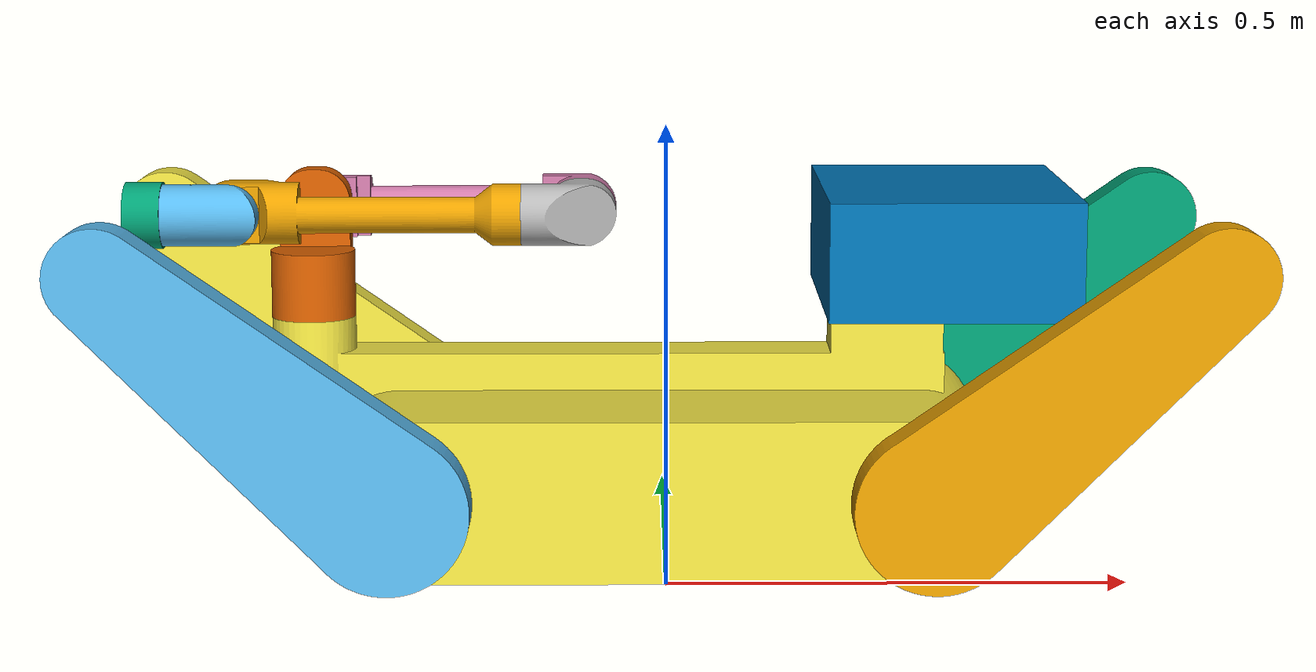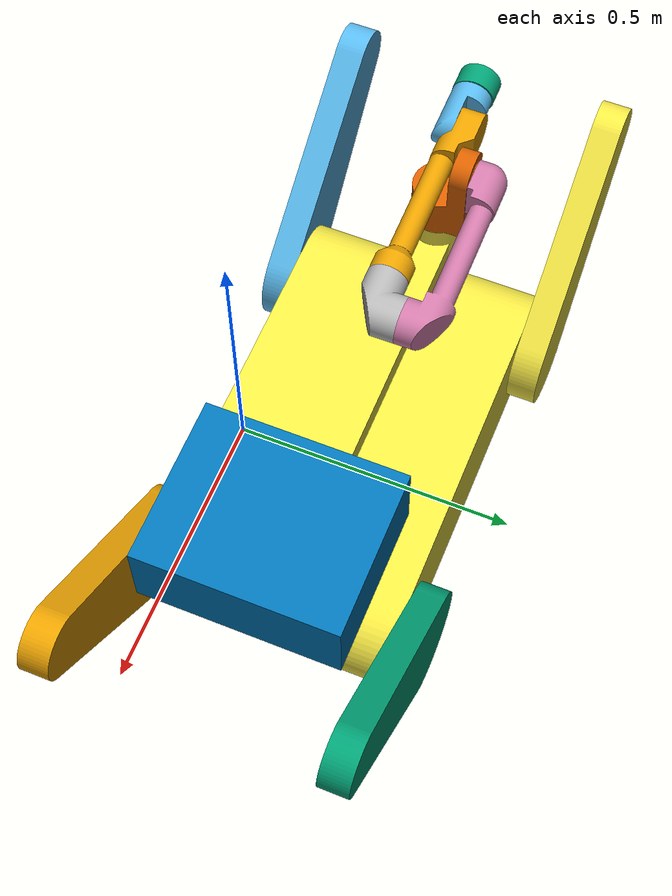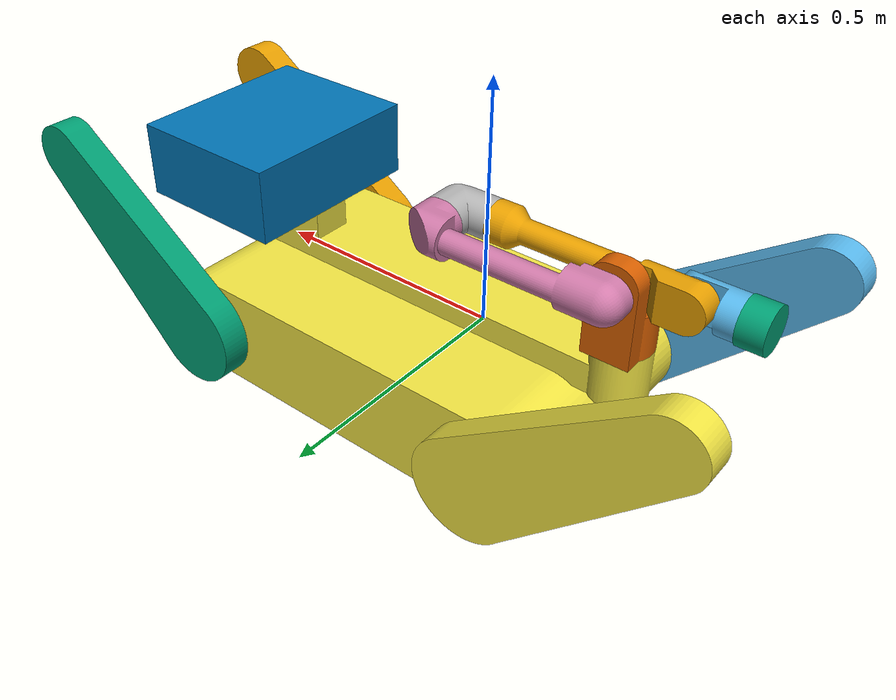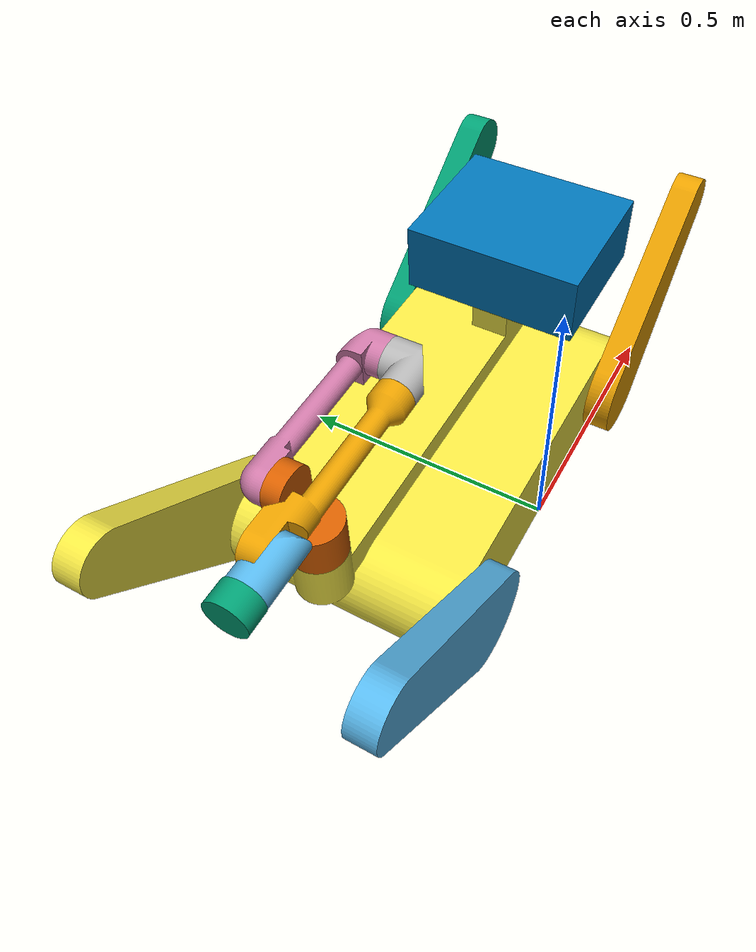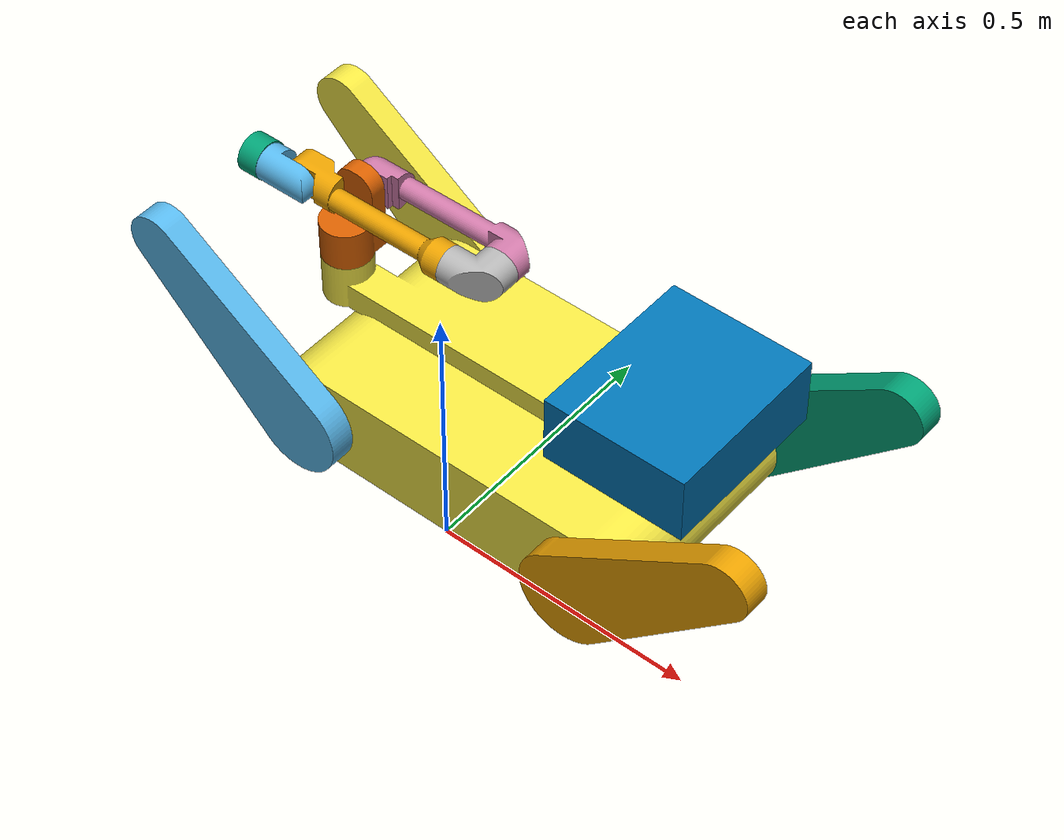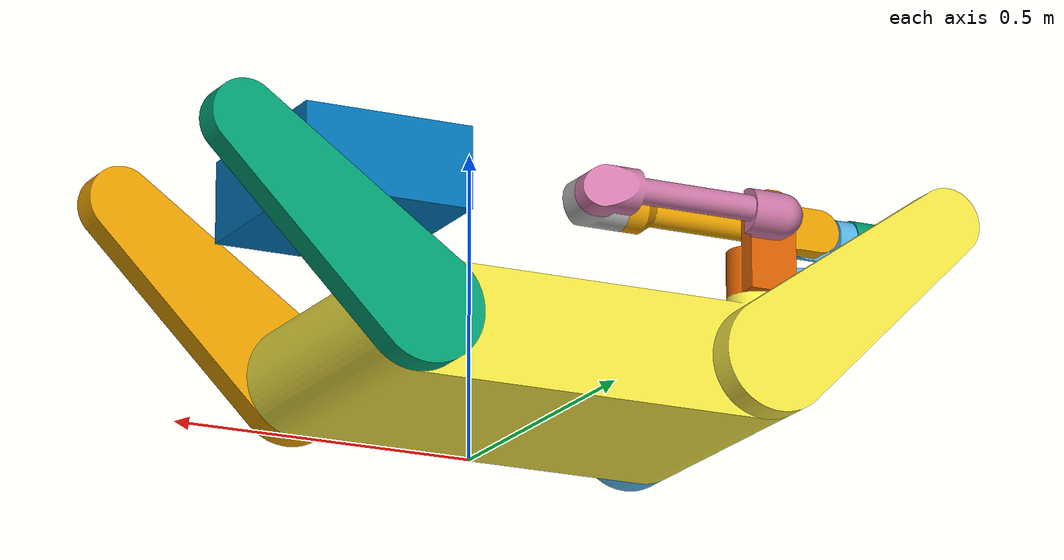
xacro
<?xml version="1.0"?>
<robot xmlns:xacro="http://www.ros.org/wiki/xacro" name="rove_full_low_res">
    <xacro:arg name="initial_positions_file" default="initial_positions.yaml" />

    <!-- Import rove_full_low_res urdf file -->
    <xacro:include filename="$(find rove_description)/urdf/rove_full_low_res.urdf" />

    <!-- Import control_xacro -->
    <xacro:include filename="rove_full_low_res.ros2_control.xacro" />

    <xacro:rove_full_low_res_ros2_control name="FakeSystem" initial_positions_file="$(arg initial_positions_file)"/>

</robot>

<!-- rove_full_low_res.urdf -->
<robot name="rove_full_low_res">
    <link name="FlipperBL">
        <inertial>
            <origin xyz="0.12159582122141516 0.10168343253448005 0.025000000000000005" rpy="0.0 -0.0 0.0" />
            <mass value="29.29052518083931" />
            <inertia ixx="0.2910866181633136" iyy="0.3900292627096684" izz="0.6689114953809776" ixy="-0.27678423112892325" iyz="2.7755575615628914e-17" ixz="0.0" />
        </inertial>
        <visual name="FlipperBL_visual">
            <origin xyz="-0.2968589956864575 -0.06317629882966745 0.0" rpy="-1.5707963267948966 -0.0 -0.08726646259971632" />
            <geometry>
                <mesh filename="package://rove_description/meshes/FlipperBL.stl" scale="0.001 0.001 0.001" />
            </geometry>
        </visual>
        <collision name="FlipperBL_collision">
            <origin xyz="-0.2968589956864575 -0.06317629882966745 0.0" rpy="-1.5707963267948966 -0.0 -0.08726646259971632" />
            <geometry>
                <mesh filename="package://rove_description/meshes/FlipperBL.stl" scale="0.001 0.001 0.001" />
            </geometry>
        </collision>
    </link>
    <link name="FlipperFL">
        <inertial>
            <origin xyz="-0.12125352408730372 0.10209137142127311 0.025" rpy="0.0 -0.0 0.0" />
            <mass value="29.2905251808393" />
            <inertia ixx="0.29237999451611363" iyy="0.38873588635686396" izz="0.6689114953809892" ixy="0.27701228827613233" iyz="2.7755575615628914e-17" ixz="0.0" />
        </inertial>
        <visual name="FlipperFL_visual">
            <origin xyz="0.3063762811858175 -0.0623436438703893 -8.881784197001253e-18" rpy="-1.5707963267948966 -0.0 0.08726646259971638" />
            <geometry>
                <mesh filename="package://rove_description/meshes/FlipperFL.stl" scale="0.001 0.001 0.001" />
            </geometry>
        </visual>
        <collision name="FlipperFL_collision">
            <origin xyz="0.3063762811858175 -0.0623436438703893 -8.881784197001253e-18" rpy="-1.5707963267948966 -0.0 0.08726646259971638" />
            <geometry>
                <mesh filename="package://rove_description/meshes/FlipperFL.stl" scale="0.001 0.001 0.001" />
            </geometry>
        </collision>
    </link>
    <link name="FlipperBR">
        <inertial>
            <origin xyz="0.1215958212214153 -0.10168343253448012 0.02500000000000007" rpy="0.0 -0.0 0.0" />
            <mass value="29.29052518083931" />
            <inertia ixx="0.2910866181633107" iyy="0.3900292627096622" izz="0.6689114953809678" ixy="0.2767842311289228" iyz="8.881784197001252e-16" ixz="0.0" />
        </inertial>
        <visual name="FlipperBR_visual">
            <origin xyz="-0.2968589956864576 0.06317629882966747 -0.418" rpy="1.5707963267948966 -0.0 0.08726646259971636" />
            <geometry>
                <mesh filename="package://rove_description/meshes/FlipperBR.stl" scale="0.001 0.001 0.001" />
            </geometry>
        </visual>
        <collision name="FlipperBR_collision">
            <origin xyz="-0.2968589956864576 0.06317629882966747 -0.418" rpy="1.5707963267948966 -0.0 0.08726646259971636" />
            <geometry>
                <mesh filename="package://rove_description/meshes/FlipperBR.stl" scale="0.001 0.001 0.001" />
            </geometry>
        </collision>
    </link>
    <link name="FlipperFR">
        <inertial>
            <origin xyz="-0.12125352408730372 -0.10209137142127314 0.02500000000000007" rpy="0.0 -0.0 0.0" />
            <mass value="29.2905251808393" />
            <inertia ixx="0.29237999451608143" iyy="0.3887358863568302" izz="0.6689114953809954" ixy="-0.27701228827613233" iyz="0.0" ixz="8.881784197001252e-16" />
        </inertial>
        <visual name="FlipperFR_visual">
            <origin xyz="0.30637628118581733 0.06234364387038916 -0.418" rpy="1.5707963267948966 -0.0 -0.08726646259971639" />
            <geometry>
                <mesh filename="package://rove_description/meshes/FlipperFR.stl" scale="0.001 0.001 0.001" />
            </geometry>
        </visual>
        <collision name="FlipperFR_collision">
            <origin xyz="0.30637628118581733 0.06234364387038916 -0.418" rpy="1.5707963267948966 -0.0 -0.08726646259971639" />
            <geometry>
                <mesh filename="package://rove_description/meshes/FlipperFR.stl" scale="0.001 0.001 0.001" />
            </geometry>
        </collision>
    </link>
    <link name="TopBox">
        <inertial>
            <origin xyz="3.552713678800501e-17 -4.146828338491559e-09 0.06581575918302096" rpy="0.0 -0.0 0.0" />
            <mass value="96.40121826749832" />
            <inertia ixx="0.7585335063712897" iyy="1.0461368392347783" izz="1.5262819900577664" ixy="8.881784197001252e-16" iyz="1.7763568394002505e-15" ixz="-8.881784197001252e-16" />
        </inertial>
        <visual name="TopBox_visual">
            <origin xyz="-0.209 0.31570997 -0.27868861" rpy="0.0 -0.0 -1.5707963267948966" />
            <geometry>
                <mesh filename="package://rove_description/meshes/TopBox.stl" scale="0.001 0.001 0.001" />
            </geometry>
        </visual>
        <collision name="TopBox_collision">
            <origin xyz="-0.209 0.31570997 -0.27868861" rpy="0.0 -0.0 -1.5707963267948966" />
            <geometry>
                <mesh filename="package://rove_description/meshes/TopBox.stl" scale="0.001 0.001 0.001" />
            </geometry>
        </collision>
    </link>
    <link name="ArmBase">
        <inertial>
            <origin xyz="-0.00013606355325087804 0.01657163505224524 0.05804777995982253" rpy="0.0 -0.0 0.0" />
            <mass value="6.7545205940294775" />
            <inertia ixx="0.017104166308066437" iyy="0.01517862348614507" izz="0.009498114793283552" ixy="1.5810979551389437e-05" iyz="-0.0034950167374411256" ixz="2.8696278390971663e-05" />
        </inertial>
        <visual name="ArmBase_visual">
            <origin xyz="0.40171020285820613 -0.20664929379471153 -0.259" rpy="6.173301504223946e-17 6.072753714006385e-17 0.008210442388665778" />
            <geometry>
                <mesh filename="package://rove_description/meshes/ArmBase.stl" scale="0.001 0.001 0.001" />
            </geometry>
        </visual>
        <collision name="ArmBase_collision">
            <origin xyz="0.40171020285820613 -0.20664929379471153 -0.259" rpy="6.173301504223946e-17 6.072753714006385e-17 0.008210442388665778" />
            <geometry>
                <mesh filename="package://rove_description/meshes/ArmBase.stl" scale="0.001 0.001 0.001" />
            </geometry>
        </collision>
    </link>
    <link name="ArmSectionA">
        <inertial>
            <origin xyz="0.1579891032905889 -3.552713678800501e-16 0.025077496294956952" rpy="0.0 -0.0 0.0" />
            <mass value="6.396156094543044" />
            <inertia ixx="0.0032596370720983092" iyy="0.09582761322448707" izz="0.09588274002141617" ixy="-1.1102230246251565e-15" iyz="-5.551115123125783e-16" ixz="0.0023194508655053903" />
        </inertial>
        <visual name="ArmSectionA_visual">
            <origin xyz="-0.3927698912750465 -0.378 -0.2732339921582292" rpy="1.5707963267948966 0.00821044238866564 3.141592653589793" />
            <geometry>
                <mesh filename="package://rove_description/meshes/ArmSectionA.stl" scale="0.001 0.001 0.001" />
            </geometry>
        </visual>
        <collision name="ArmSectionA_collision">
            <origin xyz="-0.3927698912750465 -0.378 -0.2732339921582292" rpy="1.5707963267948966 0.00821044238866564 3.141592653589793" />
            <geometry>
                <mesh filename="package://rove_description/meshes/ArmSectionA.stl" scale="0.001 0.001 0.001" />
            </geometry>
        </collision>
    </link>
    <link name="ArmSectionB">
        <inertial>
            <origin xyz="-0.017849007491051998 0.0 0.03779063134551585" rpy="0.0 -0.0 0.0" />
            <mass value="3.2157885894035196" />
            <inertia ixx="0.0024413319966500877" iyy="0.003866343551161111" izz="0.0035609359073050535" ixy="2.4980018054066027e-16" iyz="5.551115123125784e-17" ixz="0.0008295182515410814" />
        </inertial>
        <visual name="ArmSectionB_visual">
            <origin xyz="0.7020700410350835 -0.378 0.2492441619583238" rpy="-1.5707963267948966 0.00821044238866591 -1.1102604465006027e-16" />
            <geometry>
                <mesh filename="package://rove_description/meshes/ArmSectionB.stl" scale="0.001 0.001 0.001" />
            </geometry>
        </visual>
        <collision name="ArmSectionB_collision">
            <origin xyz="0.7020700410350835 -0.378 0.2492441619583238" rpy="-1.5707963267948966 0.00821044238866591 -1.1102604465006027e-16" />
            <geometry>
                <mesh filename="package://rove_description/meshes/ArmSectionB.stl" scale="0.001 0.001 0.001" />
            </geometry>
        </collision>
    </link>
    <link name="ArmSectionC">
        <inertial>
            <origin xyz="7.105427357601002e-17 0.004949483193104314 0.1865782854939781" rpy="3.038581678643135e-64 -0.0 0.0" />
            <mass value="5.889654425673101" />
            <inertia ixx="0.08542983391771675" iyy="0.08550696486907808" izz="0.0028521934194545304" ixy="-2.2204460492503136e-16" iyz="-0.0044164929169711615" ixz="6.661338147750941e-16" />
        </inertial>
        <visual name="ArmSectionC_visual">
            <origin xyz="0.37799999999999956 0.21129573878964278 -0.7659377974765399" rpy="-1.5707963267948608 1.562585884406231 1.5707963267949099" />
            <geometry>
                <mesh filename="package://rove_description/meshes/ArmSectionC.stl" scale="0.001 0.001 0.001" />
            </geometry>
        </visual>
        <collision name="ArmSectionC_collision">
            <origin xyz="0.37799999999999956 0.21129573878964278 -0.7659377974765399" rpy="-1.5707963267948608 1.562585884406231 1.5707963267949099" />
            <geometry>
                <mesh filename="package://rove_description/meshes/ArmSectionC.stl" scale="0.001 0.001 0.001" />
            </geometry>
        </collision>
    </link>
    <link name="ArmSectionD">
        <inertial>
            <origin xyz="-0.029632059801461993 2.1316282072803005e-16 -0.008621445623248434" rpy="0.0 -0.0 0.0" />
            <mass value="2.0771391836268105" />
            <inertia ixx="0.0011423755129120199" iyy="0.00247668255940503" izz="0.002561926425206252" ixy="-1.054711873393899e-15" iyz="-1.6653345369377353e-16" ixz="0.00040929731281363923" />
        </inertial>
        <visual name="ArmSectionD_visual">
            <origin xyz="1.0982797974765388 -0.3779999999999994 0.21402447878964267" rpy="-1.5707963267948966 -0.008210442388665678 1.366659615041774e-16" />
            <geometry>
                <mesh filename="package://rove_description/meshes/ArmSectionD.stl" scale="0.001 0.001 0.001" />
            </geometry>
        </visual>
        <collision name="ArmSectionD_collision">
            <origin xyz="1.0982797974765388 -0.3779999999999994 0.21402447878964267" rpy="-1.5707963267948966 -0.008210442388665678 1.366659615041774e-16" />
            <geometry>
                <mesh filename="package://rove_description/meshes/ArmSectionD.stl" scale="0.001 0.001 0.001" />
            </geometry>
        </collision>
    </link>
    <link name="ArmSectionE">
        <inertial>
            <origin xyz="1.4210854715202004e-16 -0.00017118928473184526 0.02084929946077736" rpy="0.0 -0.0 0.0" />
            <mass value="1.4461659101100297" />
            <inertia ixx="0.0007179779890870153" iyy="0.0007179981350707856" izz="0.0010168152596525264" ixy="1.1129985821867197e-13" iyz="-2.453641322369694e-06" ixz="1.898481372109018e-14" />
        </inertial>
        <visual name="ArmSectionE_visual">
            <origin xyz="0.37800000000004674 0.21462174950553956 -1.1710242404262494" rpy="-1.5707963267952678 1.562585884406228 1.5707963267954739" />
            <geometry>
                <mesh filename="package://rove_description/meshes/ArmSectionE.stl" scale="0.001 0.001 0.001" />
            </geometry>
        </visual>
        <collision name="ArmSectionE_collision">
            <origin xyz="0.37800000000004674 0.21462174950553956 -1.1710242404262494" rpy="-1.5707963267952678 1.562585884406228 1.5707963267954739" />
            <geometry>
                <mesh filename="package://rove_description/meshes/ArmSectionE.stl" scale="0.001 0.001 0.001" />
            </geometry>
        </collision>
    </link>
    <link name="RoveCore">
        <inertial>
            <origin xyz="-0.0074736754331069105 0.20900969545201392 0.0955665967564817" rpy="0.0 0.0 0.0" />
            <mass value="457.3497231349485" />
            <inertia ixx="7.782169575736962" iyy="22.605491420218968" izz="27.42576921205052" ixy="0.001752398827628343" iyz="-0.000529541103382769" ixz="0.10195558201393629" />
        </inertial>
        <visual name="RoveCore_visual">
            <origin xyz="0.0 0.0 0.0" rpy="0.0 0.0 0.0" />
            <geometry>
                <mesh filename="package://rove_description/meshes/RoveCore.stl" scale="0.001 0.001 0.001" />
            </geometry>
        </visual>
        <collision name="RoveCore_collision">
            <origin xyz="0.0 0.0 0.0" rpy="0.0 0.0 0.0" />
            <geometry>
                <mesh filename="package://rove_description/meshes/RoveCore.stl" scale="0.001 0.001 0.001" />
            </geometry>
        </collision>
    </link>
    <joint name="RoveCore_TopBox" type="fixed">
        <origin xyz="0.31570997 0.209 0.27868861" rpy="0.0 -0.0 1.5707963267948966" />
        <parent link="RoveCore" />
        <child link="TopBox" />
    </joint>
    <joint name="RoveCore_FlipperBLJoint" type="continuous">
        <origin xyz="0.29022317999999997 0.0 0.08880886" rpy="1.5707963267948966 -0.0 0.0" />
        <parent link="RoveCore" />
        <child link="FlipperBL" />
        <axis xyz="0.0 0.0 1.0" />
    </joint>
    <joint name="RoveCore_FlipperBRJoint" type="continuous">
        <origin xyz="0.29022317999999997 0.418 0.08880886" rpy="-1.5707963267948966 -0.0 0.0" />
        <parent link="RoveCore" />
        <child link="FlipperBR" />
        <axis xyz="0.0 0.0 1.0" />
    </joint>
    <joint name="RoveCore_FlipperFRJoint" type="continuous">
        <origin xyz="-0.29977682 0.418 0.08880886" rpy="-1.5707963267948966 -0.0 0.0" />
        <parent link="RoveCore" />
        <child link="FlipperFR" />
        <axis xyz="0.0 0.0 1.0" />
    </joint>
    <joint name="RoveCore_FlipperFLJoint" type="continuous">
        <origin xyz="-0.29977682 0.0 0.08880886" rpy="1.5707963267948966 -0.0 0.0" />
        <parent link="RoveCore" />
        <child link="FlipperFL" />
        <axis xyz="0.0 0.0 1.0" />
    </joint>
    <joint name="RoveCore_Joint1" type="continuous">
        <origin xyz="-0.4 0.20994051 0.259" rpy="0.0 -0.0 0.0" />
        <parent link="RoveCore" />
        <child link="ArmBase" />
        <axis xyz="0.0 0.0 1.0" />
    </joint>
    <joint name="ArmSectionA_Joint3" type="continuous">
        <origin xyz="0.30511288000000003 0.0 -0.012495339999999971" rpy="3.141592653589793 1.7347234759768038e-18 1.232595164407831e-32" />
        <parent link="ArmSectionA" />
        <child link="ArmSectionB" />
        <axis xyz="0.008210000000000004 0.0 0.9999660000000002" />
    </joint>
    <joint name="ArmSectionB_Joint4" type="continuous">
        <origin xyz="-0.06723399999999999 0.0 0.050553720000000024" rpy="-1.5707963267948966 -4.276423536147513e-50 1.5707963267948966" />
        <parent link="ArmSectionB" />
        <child link="ArmSectionC" />
        <axis xyz="2.4651065123444822e-32 -0.00821 0.9999660000000002" />
    </joint>
    <joint name="ArmSectionC_Joint5" type="continuous">
        <origin xyz="0.0 -0.0027287399999999453 0.33234199999999986" rpy="-1.5707963267948966 1.5707963267948966 0" />
        <parent link="ArmSectionC" />
        <child link="ArmSectionD" />
        <axis xyz="0.008210000000000004 0.0 -0.9999660000000002" />
    </joint>
    <joint name="ArmSectionD_Joint6" type="continuous">
        <origin xyz="-0.07280100999999987 0.0 0.0002520900000000381" rpy="1.5707963267948966 -1.5407439555097883e-33 -1.5707963267948966" />
        <parent link="ArmSectionD" />
        <child link="ArmSectionE" />
        <axis xyz="-1.2649507874735366e-35 -0.008210000000000004 0.9999660000000002" />
    </joint>
    <joint name="ArmBase_Revolute-51" type="continuous">
        <origin xyz="-0.0004931100000000299 0.060057469999999995 0.11600000000000002" rpy="-1.5707963267948966 -1.232595164407831e-32 -3.7488939637457184e-33" />
        <parent link="ArmBase" />
        <child link="ArmSectionA" />
        <axis xyz="-0.00821 0.0 0.999966" />
    </joint>
</robot>
